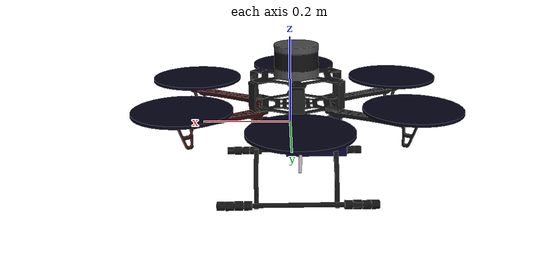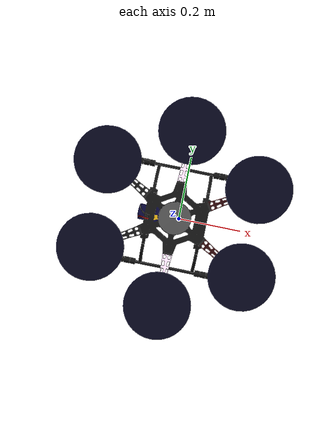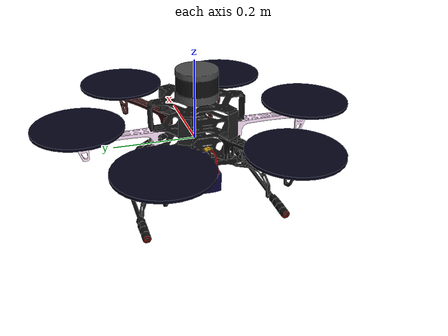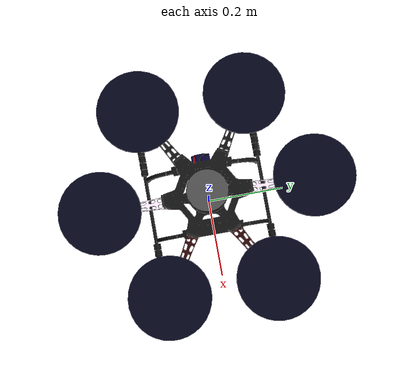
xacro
<?xml version="1.0"?>

<robot name="tyrion" xmlns:xacro="http://www.ros.org/wiki/xacro">
  <!-- Included URDF Files -->
  <xacro:arg name="tf_prefix" default=""/>.
  <xacro:include filename="$(find px4_tyrion)/urdf/tyrion.urdf.xacro" />
  <!-- Instantiate quadrotor_base_macro once (has no parameters atm) -->
  <xacro:tyrion />

  <link name="$(arg tf_prefix)/os_lidar"/>
  <joint name="$(arg tf_prefix)/ouster_joint" type="fixed">
    <origin rpy="0 0 0" xyz="0 0 0.15"/>
    <parent link="$(arg tf_prefix)/base_link"/>
    <child link="$(arg tf_prefix)/os_lidar"/>
  </joint>

  <link name="$(arg tf_prefix)/mini_tf_pub"/>
  <joint name="$(arg tf_prefix)/lidar1D_joint" type="fixed">
    <origin rpy="0 1.57 0" xyz="0 0.05 0"/>
    <parent link="$(arg tf_prefix)/base_link"/>
    <child link="$(arg tf_prefix)/mini_tf_pub"/>
  </joint>

  <link name="$(arg tf_prefix)/cgo3_camera_link"/>
  <joint name="$(arg tf_prefix)/camera_joint" type="fixed">
    <origin rpy="-1.57 0 -1.57" xyz="-0.01 0.03 -0.05"/>
    <parent link="$(arg tf_prefix)/base_link"/>
    <child link="$(arg tf_prefix)/cgo3_camera_link"/>
  </joint>

</robot>

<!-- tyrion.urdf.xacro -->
<robot name="tyrion" xmlns:xacro="http://www.ros.org/wiki/xacro">

  <xacro:property name="pi" value="3.1415926535897931" />
  <xacro:arg name="tf_prefix" default=""/>.
  <!-- Main quadrotor link -->
  <xacro:macro name="tyrion">
    <link name="$(arg tf_prefix)/base_link">
      <inertial>
        <mass value="1.477" />
        <origin xyz="0 0 0" />
        <inertia ixx="0.01152" ixy="0.0" ixz="0.0" iyy="0.01152" iyz="0.0" izz="0.0218" />
      </inertial>

      <visual>
        <origin xyz="0 0 -0.2" rpy="0 0 0" />
        <geometry>
          <mesh filename="package://rotors_description/meshes/tyrion_light.dae" scale="0.01 0.01 0.01"/>
        </geometry>
      </visual>

      <collision>
        <origin xyz="0 0 -0.2" rpy="0 0 0" />
        <geometry>
          <mesh filename="package://rotors_description/meshes/tyrion_light.dae" scale="0.01 0.01 0.01"/>
        </geometry>
      </collision>
    </link>
  </xacro:macro>
</robot>
